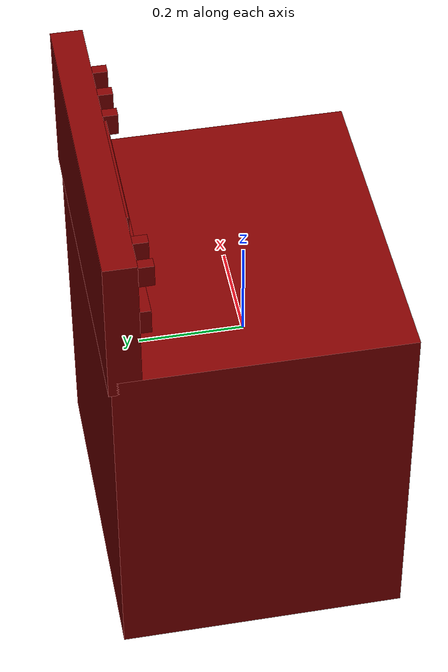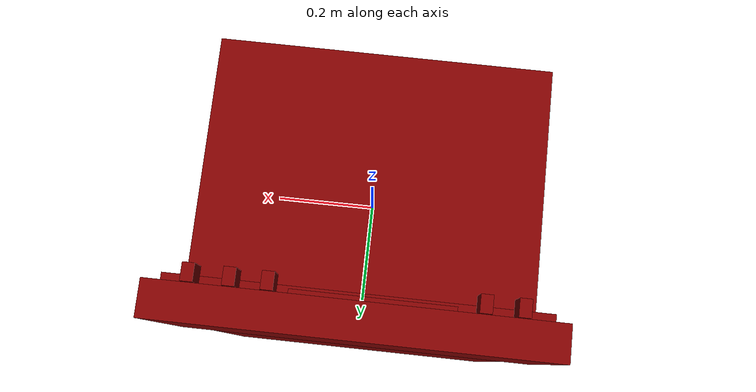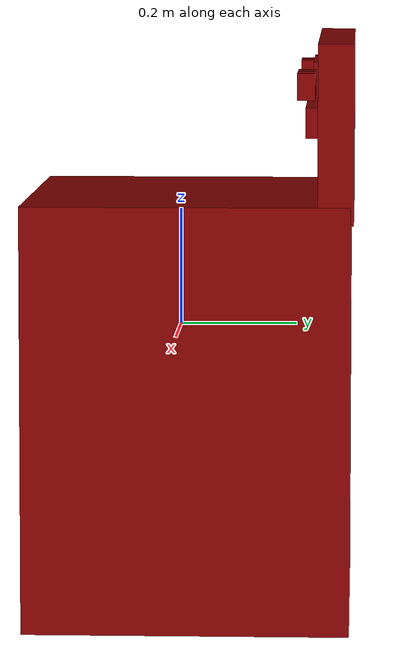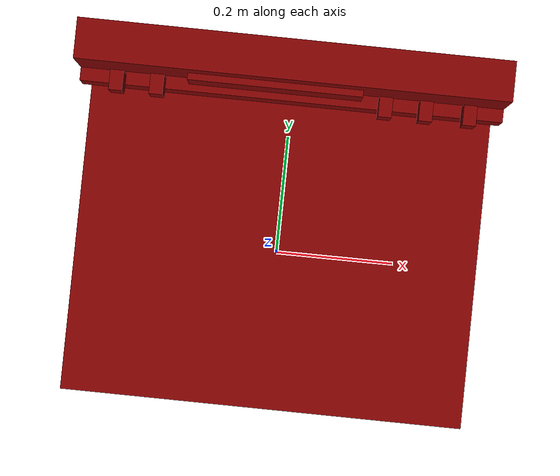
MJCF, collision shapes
<mujoco model="model">
  <compiler angle="radian"/>
  <asset>
    <texture file="visuals/material_0.png" name="tex-model" type="2d"/>
    <texture type="2d" name="image0" file="visuals/image0.png"/>
    <material name="model" reflectance="0.5" texrepeat="1 1" texture="tex-model" texuniform="false"/>
    <material name="MI_electric_range_01" texture="image0" specular="0.5" shininess="0.25"/>
    <material name="MI_electric_range_glass" specular="0.5" shininess="1.0" rgba="0.103704 0.103704 0.103704 0.250000"/>
    <mesh file="visuals/model_0.obj" name="model_0_vis" scale="1 1 1"/>
    <mesh file="visuals/model_1.obj" name="model_1_vis" scale="1 1 1"/>
    <mesh file="visuals/knob_rear_center_0.obj" name="knob_rear_center_0_vis" scale="1 1 1"/>
    <mesh file="visuals/knob_rear_right_0.obj" name="knob_rear_right_0_vis" scale="1 1 1"/>
    <mesh file="visuals/knob_front_left_0.obj" name="knob_front_left_0_vis" scale="1 1 1"/>
    <mesh file="visuals/knob_front_right_0.obj" name="knob_front_right_0_vis" scale="1 1 1"/>
    <mesh file="visuals/knob_rear_left_0.obj" name="knob_rear_left_0_vis" scale="1 1 1"/>
  </asset>
  <default>
    <default class="visual">
      <geom conaffinity="0" contype="0" group="1" type="mesh"/>
    </default>
    <default class="collision">
      <geom group="0" rgba="0.5 0 0 0.5"/>
    </default>
    <default class="region">
      <geom group="1" conaffinity="0" contype="0" rgba="0 1 0 0"/>
    </default>
  </default>
  <worldbody>
    <body>
      <body name="object">
        <geom solimp="0.998 0.998 0.001" solref="0.001 1" density="100" friction="0.95 0.3 0.1" type="mesh" mesh="model_0_vis" material="MI_electric_range_glass" class="visual"/>
        <geom solimp="0.998 0.998 0.001" solref="0.001 1" density="100" friction="0.95 0.3 0.1" type="mesh" mesh="model_1_vis" material="MI_electric_range_01" class="visual"/>
        <geom class="collision" pos="0 0.02 -0.13" size="0.32 0.275 0.36" type="box"/>
        <geom class="collision" pos="0 0.27 0.35" size="0.32 0.03 0.15" type="box"/>
        <geom class="collision" pos="0 0.23 0.37" size="0.32 0.01 0.025" type="box"/>
        <geom class="collision" pos="-0.025 0.24 0.43" size="0.13 0.01 0.03" type="box"/>
        <site name="burner_on_front_left" pos="-0.152 -0.10 0.223" size="0.10 0.0001" rgba="0.5 0 0 1" type="cylinder"/>
        <site name="burner_on_front_right" pos="0.152 -0.10 0.223" size="0.10 0.0001" rgba="0.5 0 0 1" type="cylinder"/>
        <site name="burner_on_rear_left" pos="-0.192 0.115 0.223" size="0.07 0.0001" rgba="0.5 0 0 1" type="cylinder"/>
        <site name="burner_on_rear_right" pos="0.19 0.115 0.223" size="0.07 0.0001" rgba="0.5 0 0 1" type="cylinder"/>
        <site name="burner_on_rear_center" pos="0.0 0.107 0.223" size="0.065 0.0001" rgba="0.5 0 0 1" type="cylinder"/>
        <site name="burner_front_left_place_site" pos="-0.152 -0.10 0.223" size="0.10 0.0001" rgba="0.5 0 0 0" type="cylinder"/>
        <site name="burner_front_right_place_site" pos="0.152 -0.10 0.223" size="0.10 0.0001" rgba="0.5 0 0 0" type="cylinder"/>
        <site name="burner_rear_left_place_site" pos="-0.192 0.115 0.223" size="0.07 0.0001" rgba="0.5 0 0 0" type="cylinder"/>
        <site name="burner_rear_right_place_site" pos="0.19 0.115 0.223" size="0.07 0.0001" rgba="0.5 0 0 0" type="cylinder"/>
        <site name="burner_rear_center_place_site" pos="0.0 0.107 0.223" size="0.065 0.0001" rgba="0.5 0 0 0" type="cylinder"/>
        <body name="knob_rear_center">
          <!--Add Joint Here-->
          <geom solimp="0.998 0.998 0.001" solref="0.001 1" density="100" friction="0.95 0.3 0.1" type="mesh" mesh="knob_rear_center_0_vis" material="MI_electric_range_01" class="visual"/>
          <joint pos="0.14 0.22 0.427" axis="0 1 0" type="hinge" damping="1" name="knob_rear_center_joint"/>
          <geom class="collision" pos="0.14 0.22 0.427" size="0.01 0.015 0.022" type="box" name="knob_rear_center_main"/>
        </body>
        <body name="knob_rear_right">
          <!--Add Joint Here-->
          <geom solimp="0.998 0.998 0.001" solref="0.001 1" density="100" friction="0.95 0.3 0.1" type="mesh" mesh="knob_rear_right_0_vis" material="MI_electric_range_01" class="visual"/>
          <joint pos="0.20 0.22 0.427" axis="0 1 0" type="hinge" damping="1" name="knob_rear_right_joint"/>
          <geom class="collision" pos="0.20 0.22 0.427" size="0.01 0.015 0.022" type="box" name="knob_rear_right_main"/>
        </body>
        <body name="knob_front_left">
          <!--Add Joint Here-->
          <geom solimp="0.998 0.998 0.001" solref="0.001 1" density="100" friction="0.95 0.3 0.1" type="mesh" mesh="knob_front_left_0_vis" material="MI_electric_range_01" class="visual"/>
          <joint pos="-0.26 0.22 0.427" axis="0 1 0" type="hinge" damping="1" name="knob_front_left_joint"/>
          <geom class="collision" pos="-0.26 0.22 0.427" size="0.01 0.015 0.022" type="box" name="knob_front_left_main"/>
        </body>
        <body name="knob_front_right">
          <!--Add Joint Here-->
          <geom solimp="0.998 0.998 0.001" solref="0.001 1" density="100" friction="0.95 0.3 0.1" type="mesh" mesh="knob_front_right_0_vis" material="MI_electric_range_01" class="visual"/>
          <joint pos="0.265 0.22 0.427" axis="0 1 0" type="hinge" damping="1" name="knob_front_right_joint"/>
          <geom class="collision" pos="0.265 0.22 0.427" size="0.01 0.015 0.022" type="box" name="knob_front_right_main"/>
        </body>
        <body name="knob_rear_left">
          <!--Add Joint Here-->
          <geom solimp="0.998 0.998 0.001" solref="0.001 1" density="100" friction="0.95 0.3 0.1" type="mesh" mesh="knob_rear_left_0_vis" material="MI_electric_range_01" class="visual"/>
          <joint pos="-0.20 0.22 0.427" axis="0 1 0" type="hinge" damping="1" name="knob_rear_left_joint"/>
          <geom class="collision" pos="-0.20 0.22 0.427" size="0.01 0.015 0.022" type="box" name="knob_rear_left_main"/>
        </body>
        <!-- exterior bounding box points -->
        <geom class="region" name="reg_main" type="box" pos="0.0 0.01999999999999999 -0.1335" size="0.32 0.275 0.3665"/>
      </body>
    </body>
  </worldbody>
</mujoco>
